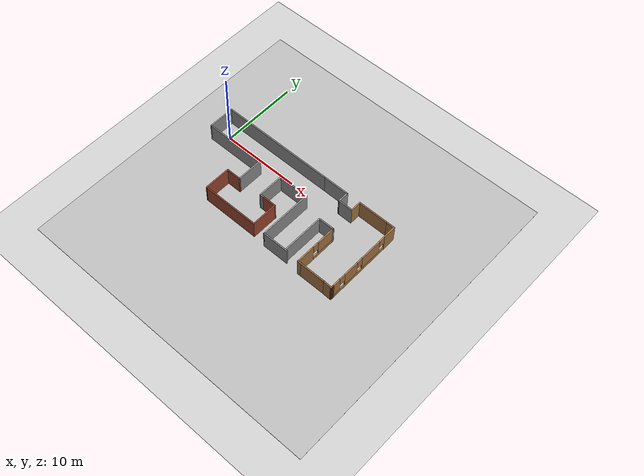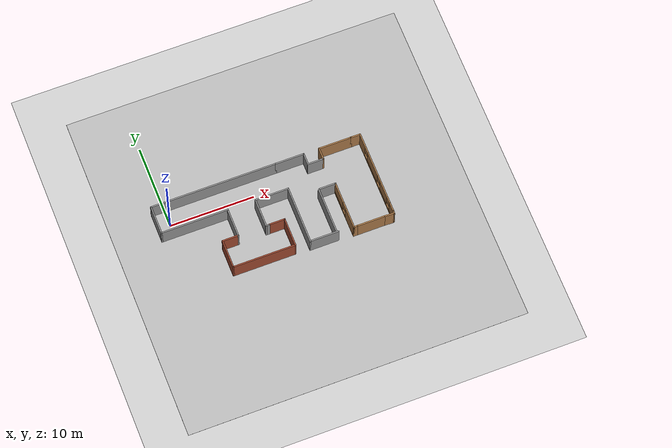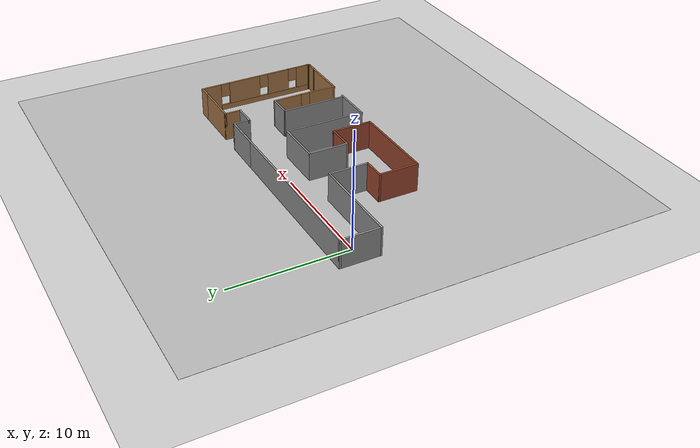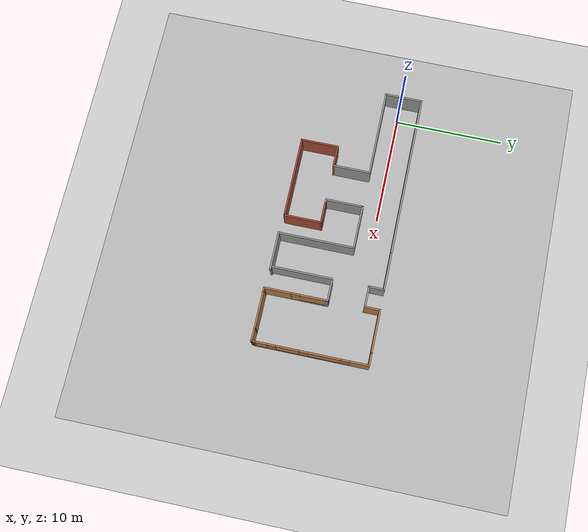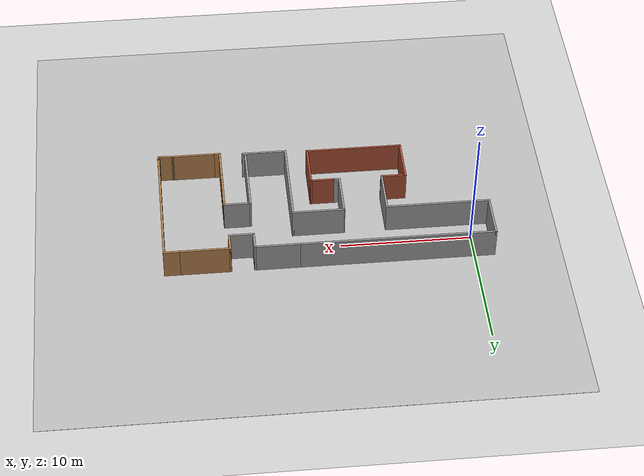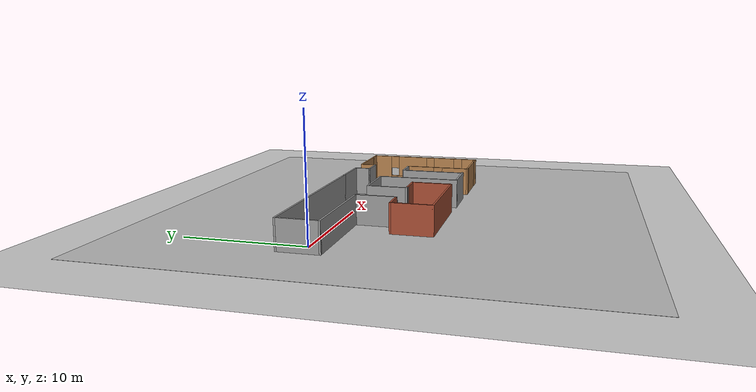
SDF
<sdf version="1.7">
 <world name="lab_world">
  <gravity>0 0 -9.8</gravity>
  <model name="ground_plane">
   <static>1</static>
   <link name="link">
    <collision name="collision">
     <geometry><plane><normal>0 0 1</normal><size>100 100</size></plane></geometry>
     <surface><friction><ode><mu>100</mu><mu2>50</mu2></ode></friction></surface>
    </collision>
    <visual name="visual">
     <cast_shadows>0</cast_shadows>
     <geometry><plane><normal>0 0 1</normal><size>100 100</size></plane></geometry>
     <material>
      <script><uri>file://media/materials/scripts/gazebo.material</uri><name>Gazebo/Grey</name></script>
     </material>
    </visual>
   </link>
  </model>
  <light name="sun" type="directional">
   <pose>0 0 10 0 -0 0</pose>
   <diffuse>0.8 0.8 0.8 1</diffuse>
   <specular>0.2 0.2 0.2 1</specular>
   <attenuation>
    <range>1000</range>
    <constant>0.9</constant>
    <linear>0.01</linear>
    <quadratic>0.001</quadratic>
   </attenuation>
   <direction>-0.5 0.1 -0.9</direction>
   <spot><inner_angle>0</inner_angle><outer_angle>0</outer_angle><falloff>0</falloff></spot>
  </light>
  <magnetic_field>6e-06 2.3e-05 -4.2e-05</magnetic_field>
  <atmosphere type="adiabatic"/>
  <physics type="ode">
   <max_step_size>0.001</max_step_size>
   <real_time_factor>1</real_time_factor>
   <real_time_update_rate>1000</real_time_update_rate>
  </physics>
  <scene><ambient>0.4 0.4 0.4 1</ambient><background>0.7 0.7 0.7 1</background><shadows>1</shadows></scene>
  <spherical_coordinates>
   <surface_model>EARTH_WGS84</surface_model>
   <latitude_deg>0</latitude_deg>
   <longitude_deg>0</longitude_deg>
   <elevation>0</elevation>
   <heading_deg>0</heading_deg>
  </spherical_coordinates>
  <model name="env01">
   <pose>11.0184 -3.33989 0 0 -0 0</pose>
   <link name="Wall_11">
    <collision name="Wall_11_Collision">
     <geometry><box><size>4 0.15 2.5</size></box></geometry>
     <pose>0 0 1.25 0 -0 0</pose>
    </collision>
    <visual name="Wall_11_Visual">
     <pose>0 0 1.25 0 -0 0</pose>
     <geometry><box><size>4 0.15 2.5</size></box></geometry>
     <material>
      <script><uri>file://media/materials/scripts/gazebo.material</uri><name>Gazebo/Grey</name></script>
      <ambient>1 1 1 1</ambient>
     </material>
     <meta><layer>0</layer></meta>
    </visual>
    <pose>0.616572 1.84989 0 0 -0 0</pose>
   </link>
   <link name="Wall_13">
    <collision name="Wall_13_Collision">
     <geometry><box><size>3.5 0.15 2.5</size></box></geometry>
     <pose>0 0 1.25 0 -0 0</pose>
    </collision>
    <visual name="Wall_13_Visual">
     <pose>0 0 1.25 0 -0 0</pose>
     <geometry><box><size>3.5 0.15 2.5</size></box></geometry>
     <material>
      <script><uri>file://media/materials/scripts/gazebo.material</uri><name>Gazebo/Grey</name></script>
      <ambient>1 1 1 1</ambient>
     </material>
     <meta><layer>0</layer></meta>
    </visual>
    <pose>-4.65843 0.174886 0 0 -0 -1.5708</pose>
   </link>
   <link name="Wall_14">
    <collision name="Wall_14_Collision">
     <geometry><box><size>2 0.15 2.5</size></box></geometry>
     <pose>0 0 1.25 0 -0 0</pose>
    </collision>
    <visual name="Wall_14_Visual">
     <pose>0 0 1.25 0 -0 0</pose>
     <geometry><box><size>2 0.15 2.5</size></box></geometry>
     <material>
      <script><uri>file://media/materials/scripts/gazebo.material</uri><name>Gazebo/Bricks</name></script>
      <ambient>1 1 1 1</ambient>
     </material>
     <meta><layer>0</layer></meta>
    </visual>
    <pose>-5.58343 -1.50011 0 0 -0 3.14159</pose>
   </link>
   <link name="Wall_15">
    <collision name="Wall_15_Collision">
     <geometry><box><size>3.5 0.15 2.5</size></box></geometry>
     <pose>0 0 1.25 0 -0 0</pose>
    </collision>
    <visual name="Wall_15_Visual">
     <pose>0 0 1.25 0 -0 0</pose>
     <geometry><box><size>3.5 0.15 2.5</size></box></geometry>
     <material>
      <script><uri>file://media/materials/scripts/gazebo.material</uri><name>Gazebo/Bricks</name></script>
      <ambient>1 1 1 1</ambient>
     </material>
     <meta><layer>0</layer></meta>
    </visual>
    <pose>-6.50843 -3.17511 0 0 -0 -1.5708</pose>
   </link>
   <link name="Wall_16">
    <collision name="Wall_16_Collision">
     <geometry><box><size>7.5 0.15 2.5</size></box></geometry>
     <pose>0 0 1.25 0 -0 0</pose>
    </collision>
    <visual name="Wall_16_Visual">
     <pose>0 0 1.25 0 -0 0</pose>
     <geometry><box><size>7.5 0.15 2.5</size></box></geometry>
     <material>
      <script><uri>file://media/materials/scripts/gazebo.material</uri><name>Gazebo/Bricks</name></script>
      <ambient>1 1 1 1</ambient>
     </material>
     <meta><layer>0</layer></meta>
    </visual>
    <pose>-2.83343 -4.85011 0 0 -0 0</pose>
   </link>
   <link name="Wall_17">
    <collision name="Wall_17_Collision">
     <geometry><box><size>3.5 0.15 2.5</size></box></geometry>
     <pose>0 0 1.25 0 -0 0</pose>
    </collision>
    <visual name="Wall_17_Visual">
     <pose>0 0 1.25 0 -0 0</pose>
     <geometry><box><size>3.5 0.15 2.5</size></box></geometry>
     <material>
      <script><uri>file://media/materials/scripts/gazebo.material</uri><name>Gazebo/Bricks</name></script>
      <ambient>1 1 1 1</ambient>
     </material>
     <meta><layer>0</layer></meta>
    </visual>
    <pose>0.841572 -3.17511 0 0 -0 1.5708</pose>
   </link>
   <link name="Wall_18">
    <collision name="Wall_18_Collision">
     <geometry><box><size>2 0.15 2.5</size></box></geometry>
     <pose>0 0 1.25 0 -0 0</pose>
    </collision>
    <visual name="Wall_18_Visual">
     <pose>0 0 1.25 0 -0 0</pose>
     <geometry><box><size>2 0.15 2.5</size></box></geometry>
     <material>
      <script><uri>file://media/materials/scripts/gazebo.material</uri><name>Gazebo/Bricks</name></script>
      <ambient>1 1 1 1</ambient>
     </material>
     <meta><layer>0</layer></meta>
    </visual>
    <pose>-0.083428 -1.50011 0 0 -0 3.14159</pose>
   </link>
   <link name="Wall_19">
    <collision name="Wall_19_Collision">
     <geometry><box><size>0.5 0.15 2.5</size></box></geometry>
     <pose>0 0 1.25 0 -0 0</pose>
    </collision>
    <visual name="Wall_19_Visual">
     <pose>0 0 1.25 0 -0 0</pose>
     <geometry><box><size>0.5 0.15 2.5</size></box></geometry>
     <material>
      <script><uri>file://media/materials/scripts/gazebo.material</uri><name>Gazebo/Grey</name></script>
      <ambient>1 1 1 1</ambient>
     </material>
     <meta><layer>0</layer></meta>
    </visual>
    <pose>-1.18343 -1.50011 0 0 -0 3.14159</pose>
   </link>
   <link name="Wall_20">
    <collision name="Wall_20_Collision">
     <geometry><box><size>3.5 0.15 2.5</size></box></geometry>
     <pose>0 0 1.25 0 -0 0</pose>
    </collision>
    <visual name="Wall_20_Visual">
     <pose>0 0 1.25 0 -0 0</pose>
     <geometry><box><size>3.5 0.15 2.5</size></box></geometry>
     <material>
      <script><uri>file://media/materials/scripts/gazebo.material</uri><name>Gazebo/Grey</name></script>
      <ambient>1 1 1 1</ambient>
     </material>
     <meta><layer>0</layer></meta>
    </visual>
    <pose>-1.35843 0.174886 0 0 -0 1.5708</pose>
   </link>
   <link name="Wall_22">
    <collision name="Wall_22_Collision">
     <geometry><box><size>3.5 0.15 2.5</size></box></geometry>
     <pose>0 0 1.25 0 -0 0</pose>
    </collision>
    <visual name="Wall_22_Visual">
     <pose>0 0 1.25 0 -0 0</pose>
     <geometry><box><size>3.5 0.15 2.5</size></box></geometry>
     <material>
      <script><uri>file://media/materials/scripts/gazebo.material</uri><name>Gazebo/Grey</name></script>
      <ambient>1 1 1 1</ambient>
     </material>
     <meta><layer>0</layer></meta>
    </visual>
    <pose>4.01657 5.19989 0 0 -0 0</pose>
   </link>
   <link name="Wall_23">
    <collision name="Wall_23_Collision">
     <geometry><box><size>1.5 0.15 2.5</size></box></geometry>
     <pose>0 0 1.25 0 -0 0</pose>
    </collision>
    <visual name="Wall_23_Visual">
     <pose>0 0 1.25 0 -0 0</pose>
     <geometry><box><size>1.5 0.15 2.5</size></box></geometry>
     <material>
      <script><uri>file://media/materials/scripts/gazebo.material</uri><name>Gazebo/Grey</name></script>
      <ambient>1 1 1 1</ambient>
     </material>
     <meta><layer>0</layer></meta>
    </visual>
    <pose>5.69157 4.52489 0 0 -0 -1.5708</pose>
   </link>
   <link name="Wall_25">
    <collision name="Wall_25_Collision">
     <geometry><box><size>5.5 0.15 2.5</size></box></geometry>
     <pose>0 0 1.25 0 -0 0</pose>
    </collision>
    <visual name="Wall_25_Visual">
     <pose>0 0 1.25 0 -0 0</pose>
     <geometry><box><size>5.5 0.15 2.5</size></box></geometry>
     <material>
      <script><uri>file://media/materials/scripts/gazebo.material</uri><name>Gazebo/Grey</name></script>
      <ambient>1 1 1 1</ambient>
     </material>
     <meta><layer>0</layer></meta>
    </visual>
    <pose>5.69157 -2.17511 0 0 -0 -1.5708</pose>
   </link>
   <link name="Wall_29">
    <collision name="Wall_29_Collision">
     <geometry><box><size>7 0.15 2.5</size></box></geometry>
     <pose>0 0 1.25 0 -0 0</pose>
    </collision>
    <visual name="Wall_29_Visual">
     <pose>0 0 1.25 0 -0 0</pose>
     <geometry><box><size>7 0.15 2.5</size></box></geometry>
     <material>
      <script><uri>file://media/materials/scripts/gazebo.material</uri><name>Gazebo/Grey</name></script>
      <ambient>1 1 1 1</ambient>
     </material>
     <meta><layer>0</layer></meta>
    </visual>
    <pose>2.54157 -1.57511 0 0 -0 -1.5708</pose>
   </link>
   <link name="Wall_32">
    <collision name="Wall_32_Collision">
     <geometry><box><size>3.5 0.15 2.5</size></box></geometry>
     <pose>0 0 1.25 0 -0 0</pose>
    </collision>
    <visual name="Wall_32_Visual">
     <pose>0 0 1.25 0 -0 0</pose>
     <geometry><box><size>3.5 0.15 2.5</size></box></geometry>
     <material>
      <script><uri>file://media/materials/scripts/gazebo.material</uri><name>Gazebo/Grey</name></script>
      <ambient>1 1 1 1</ambient>
     </material>
     <meta><layer>0</layer></meta>
    </visual>
    <pose>4.21657 -5.00011 0 0 -0 0</pose>
   </link>
   <link name="Wall_34">
    <collision name="Wall_34_Collision">
     <geometry><box><size>2 0.15 2.5</size></box></geometry>
     <pose>0 0 1.25 0 -0 0</pose>
    </collision>
    <visual name="Wall_34_Visual">
     <pose>0 0 1.25 0 -0 0</pose>
     <geometry><box><size>2 0.15 2.5</size></box></geometry>
     <material>
      <script><uri>file://media/materials/scripts/gazebo.material</uri><name>Gazebo/Grey</name></script>
      <ambient>1 1 1 1</ambient>
     </material>
     <meta><layer>0</layer></meta>
    </visual>
    <pose>6.61657 3.84989 0 0 -0 0</pose>
   </link>
   <link name="Wall_35">
    <collision name="Wall_35_Collision">
     <geometry><box><size>1.5 0.15 2.5</size></box></geometry>
     <pose>0 0 1.25 0 -0 0</pose>
    </collision>
    <visual name="Wall_35_Visual">
     <pose>0 0 1.25 0 -0 0</pose>
     <geometry><box><size>1.5 0.15 2.5</size></box></geometry>
     <material>
      <script><uri>file://media/materials/scripts/gazebo.material</uri><name>Gazebo/Wood</name></script>
      <ambient>1 1 1 1</ambient>
     </material>
     <meta><layer>0</layer></meta>
    </visual>
    <pose>7.54157 4.52489 0 0 -0 1.5708</pose>
   </link>
   <link name="Wall_36">
    <collision name="Wall_36_Collision">
     <geometry><box><size>4 0.15 2.5</size></box></geometry>
     <pose>0 0 1.25 0 -0 0</pose>
    </collision>
    <visual name="Wall_36_Visual">
     <pose>0 0 1.25 0 -0 0</pose>
     <geometry><box><size>4 0.15 2.5</size></box></geometry>
     <material>
      <script><uri>file://media/materials/scripts/gazebo.material</uri><name>Gazebo/Wood</name></script>
      <ambient>1 1 1 1</ambient>
     </material>
     <meta><layer>0</layer></meta>
    </visual>
    <pose>9.46657 5.19989 0 0 -0 0</pose>
   </link>
   <link name="Wall_38">
    <collision name="Wall_38_Collision">
     <geometry><box><size>3.5 0.15 2.5</size></box></geometry>
     <pose>0 0 1.25 0 -0 0</pose>
    </collision>
    <visual name="Wall_38_Visual">
     <pose>0 0 1.25 0 -0 0</pose>
     <geometry><box><size>3.5 0.15 2.5</size></box></geometry>
     <material>
      <script><uri>file://media/materials/scripts/gazebo.material</uri><name>Gazebo/Wood</name></script>
      <ambient>1 1 1 1</ambient>
     </material>
     <meta><layer>0</layer></meta>
    </visual>
    <pose>9.71657 -5.15011 0 0 -0 3.14159</pose>
   </link>
   <link name="Wall_39">
    <collision name="Wall_39_Collision">
     <geometry><box><size>0.5 0.15 2.5</size></box></geometry>
     <pose>0 0 1.25 0 -0 0</pose>
    </collision>
    <visual name="Wall_39_Visual">
     <pose>0 0 1.25 0 -0 0</pose>
     <geometry><box><size>0.5 0.15 2.5</size></box></geometry>
     <material>
      <script><uri>file://media/materials/scripts/gazebo.material</uri><name>Gazebo/Wood</name></script>
      <ambient>1 1 1 1</ambient>
     </material>
     <meta><layer>0</layer></meta>
    </visual>
    <pose>7.86657 -5.15011 0 0 -0 3.14159</pose>
   </link>
   <link name="Wall_4">
    <collision name="Wall_4_Collision">
     <geometry><box><size>3.5 0.15 2.5</size></box></geometry>
     <pose>0 0 1.25 0 -0 0</pose>
    </collision>
    <visual name="Wall_4_Visual">
     <pose>0 0 1.25 0 -0 0</pose>
     <geometry><box><size>3.5 0.15 2.5</size></box></geometry>
     <material>
      <script><uri>file://media/materials/scripts/gazebo.material</uri><name>Gazebo/Grey</name></script>
      <ambient>1 1 1 1</ambient>
     </material>
     <meta><layer>0</layer></meta>
    </visual>
    <pose>-12.5084 3.52489 0 0 -0 1.5708</pose>
   </link>
   <link name="Wall_40">
    <pose>7.69157 -2.35011 0 0 -0 1.5708</pose>
    <visual name="Wall_40_Visual_0">
     <pose>-1.63132 0 1.25 0 -0 0</pose>
     <geometry><box><size>2.48735 0.15 2.5</size></box></geometry>
     <material>
      <script><uri>file://media/materials/scripts/gazebo.material</uri><name>Gazebo/Wood</name></script>
      <ambient>1 1 1 1</ambient>
     </material>
     <meta><layer>0</layer></meta>
    </visual>
    <collision name="Wall_40_Collision_0">
     <geometry><box><size>2.48735 0.15 2.5</size></box></geometry>
     <pose>-1.63132 0 1.25 0 -0 0</pose>
    </collision>
    <visual name="Wall_40_Visual_1">
     <pose>1.24368 0 0.25 0 -0 0</pose>
     <geometry><box><size>3.26265 0.15 0.5</size></box></geometry>
     <material>
      <script><uri>file://media/materials/scripts/gazebo.material</uri><name>Gazebo/Wood</name></script>
      <ambient>1 1 1 1</ambient>
     </material>
     <meta><layer>0</layer></meta>
    </visual>
    <collision name="Wall_40_Collision_1">
     <geometry><box><size>3.26265 0.15 0.5</size></box></geometry>
     <pose>1.24368 0 0.25 0 -0 0</pose>
    </collision>
    <visual name="Wall_40_Visual_2">
     <pose>1.64368 0 1.5 0 -0 0</pose>
     <geometry><box><size>2.46265 0.15 2</size></box></geometry>
     <material>
      <script><uri>file://media/materials/scripts/gazebo.material</uri><name>Gazebo/Wood</name></script>
      <ambient>1 1 1 1</ambient>
     </material>
     <meta><layer>0</layer></meta>
    </visual>
    <collision name="Wall_40_Collision_2">
     <geometry><box><size>2.46265 0.15 2</size></box></geometry>
     <pose>1.64368 0 1.5 0 -0 0</pose>
    </collision>
    <visual name="Wall_40_Visual_3">
     <pose>0.012351 0 1.9 0 -0 0</pose>
     <geometry><box><size>0.8 0.15 1.2</size></box></geometry>
     <material>
      <script><uri>file://media/materials/scripts/gazebo.material</uri><name>Gazebo/Wood</name></script>
      <ambient>1 1 1 1</ambient>
     </material>
     <meta><layer>0</layer></meta>
    </visual>
    <collision name="Wall_40_Collision_3">
     <geometry><box><size>0.8 0.15 1.2</size></box></geometry>
     <pose>0.012351 0 1.9 0 -0 0</pose>
    </collision>
   </link>
   <link name="Wall_41">
    <collision name="Wall_41_Collision">
     <geometry><box><size>0.15 0.15 2.5</size></box></geometry>
     <pose>0 0 1.25 0 -0 0</pose>
    </collision>
    <visual name="Wall_41_Visual">
     <pose>0 0 1.25 0 -0 0</pose>
     <geometry><box><size>0.15 0.15 2.5</size></box></geometry>
     <material>
      <script><uri>file://media/materials/scripts/gazebo.material</uri><name>Gazebo/Grey</name></script>
      <ambient>1 1 1 1</ambient>
     </material>
     <meta><layer>0</layer></meta>
    </visual>
    <pose>7.69157 0.449886 0 0 -0 0</pose>
   </link>
   <link name="Wall_42">
    <collision name="Wall_42_Collision">
     <geometry><box><size>0.15 0.15 2.5</size></box></geometry>
     <pose>0 0 1.25 0 -0 0</pose>
    </collision>
    <visual name="Wall_42_Visual">
     <pose>0 0 1.25 0 -0 0</pose>
     <geometry><box><size>0.15 0.15 2.5</size></box></geometry>
     <material>
      <script><uri>file://media/materials/scripts/gazebo.material</uri><name>Gazebo/Grey</name></script>
      <ambient>1 1 1 1</ambient>
     </material>
     <meta><layer>0</layer></meta>
    </visual>
    <pose>7.69157 0.449886 0 0 -0 0</pose>
   </link>
   <link name="Wall_43">
    <collision name="Wall_43_Collision">
     <geometry><box><size>0.25 0.15 2.5</size></box></geometry>
     <pose>0 0 1.25 0 -0 0</pose>
    </collision>
    <visual name="Wall_43_Visual">
     <pose>0 0 1.25 0 -0 0</pose>
     <geometry><box><size>0.25 0.15 2.5</size></box></geometry>
     <material>
      <script><uri>file://media/materials/scripts/gazebo.material</uri><name>Gazebo/Grey</name></script>
      <ambient>1 1 1 1</ambient>
     </material>
     <meta><layer>0</layer></meta>
    </visual>
    <pose>7.69157 0.499886 0 0 -0 1.5708</pose>
   </link>
   <link name="Wall_44">
    <collision name="Wall_44_Collision">
     <geometry><box><size>2 0.15 2.5</size></box></geometry>
     <pose>0 0 1.25 0 -0 0</pose>
    </collision>
    <visual name="Wall_44_Visual">
     <pose>0 0 1.25 0 -0 0</pose>
     <geometry><box><size>2 0.15 2.5</size></box></geometry>
     <material>
      <script><uri>file://media/materials/scripts/gazebo.material</uri><name>Gazebo/Grey</name></script>
      <ambient>1 1 1 1</ambient>
     </material>
     <meta><layer>0</layer></meta>
    </visual>
    <pose>6.76657 0.549886 0 0 -0 3.14159</pose>
   </link>
   <link name="Wall_46">
    <collision name="Wall_46_Collision">
     <geometry><box><size>1.25 0.15 2.5</size></box></geometry>
     <pose>0 0 1.25 0 -0 0</pose>
    </collision>
    <visual name="Wall_46_Visual">
     <pose>0 0 1.25 0 -0 0</pose>
     <geometry><box><size>1.25 0.15 2.5</size></box></geometry>
     <material>
      <script><uri>file://media/materials/scripts/gazebo.material</uri><name>Gazebo/Wood</name></script>
      <ambient>1 1 1 1</ambient>
     </material>
     <meta><layer>0</layer></meta>
    </visual>
    <pose>11.9416 5.19989 0 0 -0 0</pose>
   </link>
   <link name="Wall_47">
    <pose>12.4916 0.149886 0 0 -0 -1.5708</pose>
    <visual name="Wall_47_Visual_0">
     <pose>-4.24104 0 1.25 0 -0 0</pose>
     <geometry><box><size>1.76792 0.15 2.5</size></box></geometry>
     <material>
      <script><uri>file://media/materials/scripts/gazebo.material</uri><name>Gazebo/Wood</name></script>
      <ambient>1 1 1 1</ambient>
     </material>
     <meta><layer>0</layer></meta>
    </visual>
    <collision name="Wall_47_Collision_0">
     <geometry><box><size>1.76792 0.15 2.5</size></box></geometry>
     <pose>-4.24104 0 1.25 0 -0 0</pose>
    </collision>
    <visual name="Wall_47_Visual_1">
     <pose>0.883958 0 0.25 0 -0 0</pose>
     <geometry><box><size>8.48208 0.15 0.5</size></box></geometry>
     <material>
      <script><uri>file://media/materials/scripts/gazebo.material</uri><name>Gazebo/Wood</name></script>
      <ambient>1 1 1 1</ambient>
     </material>
     <meta><layer>0</layer></meta>
    </visual>
    <collision name="Wall_47_Collision_1">
     <geometry><box><size>8.48208 0.15 0.5</size></box></geometry>
     <pose>0.883958 0 0.25 0 -0 0</pose>
    </collision>
    <visual name="Wall_47_Visual_2">
     <pose>-1.10162 0 1.5 0 -0 0</pose>
     <geometry><box><size>2.91093 0.15 2</size></box></geometry>
     <material>
      <script><uri>file://media/materials/scripts/gazebo.material</uri><name>Gazebo/Wood</name></script>
      <ambient>1 1 1 1</ambient>
     </material>
     <meta><layer>0</layer></meta>
    </visual>
    <collision name="Wall_47_Collision_2">
     <geometry><box><size>2.91093 0.15 2</size></box></geometry>
     <pose>-1.10162 0 1.5 0 -0 0</pose>
    </collision>
    <visual name="Wall_47_Visual_3">
     <pose>2.16826 0 1.5 0 -0 0</pose>
     <geometry><box><size>2.02883 0.15 2</size></box></geometry>
     <material>
      <script><uri>file://media/materials/scripts/gazebo.material</uri><name>Gazebo/Wood</name></script>
      <ambient>1 1 1 1</ambient>
     </material>
     <meta><layer>0</layer></meta>
    </visual>
    <collision name="Wall_47_Collision_3">
     <geometry><box><size>2.02883 0.15 2</size></box></geometry>
     <pose>2.16826 0 1.5 0 -0 0</pose>
    </collision>
    <visual name="Wall_47_Visual_4">
     <pose>4.55384 0 1.5 0 -0 0</pose>
     <geometry><box><size>1.14232 0.15 2</size></box></geometry>
     <material>
      <script><uri>file://media/materials/scripts/gazebo.material</uri><name>Gazebo/Wood</name></script>
      <ambient>1 1 1 1</ambient>
     </material>
     <meta><layer>0</layer></meta>
    </visual>
    <collision name="Wall_47_Collision_4">
     <geometry><box><size>1.14232 0.15 2</size></box></geometry>
     <pose>4.55384 0 1.5 0 -0 0</pose>
    </collision>
    <visual name="Wall_47_Visual_5">
     <pose>-2.95708 0 1.9 0 -0 0</pose>
     <geometry><box><size>0.8 0.15 1.2</size></box></geometry>
     <material>
      <script><uri>file://media/materials/scripts/gazebo.material</uri><name>Gazebo/Wood</name></script>
      <ambient>1 1 1 1</ambient>
     </material>
     <meta><layer>0</layer></meta>
    </visual>
    <collision name="Wall_47_Collision_5">
     <geometry><box><size>0.8 0.15 1.2</size></box></geometry>
     <pose>-2.95708 0 1.9 0 -0 0</pose>
    </collision>
    <visual name="Wall_47_Visual_6">
     <pose>0.753851 0 1.9 0 -0 0</pose>
     <geometry><box><size>0.8 0.15 1.2</size></box></geometry>
     <material>
      <script><uri>file://media/materials/scripts/gazebo.material</uri><name>Gazebo/Wood</name></script>
      <ambient>1 1 1 1</ambient>
     </material>
     <meta><layer>0</layer></meta>
    </visual>
    <collision name="Wall_47_Collision_6">
     <geometry><box><size>0.8 0.15 1.2</size></box></geometry>
     <pose>0.753851 0 1.9 0 -0 0</pose>
    </collision>
    <visual name="Wall_47_Visual_7">
     <pose>3.58268 0 1.9 0 -0 0</pose>
     <geometry><box><size>0.8 0.15 1.2</size></box></geometry>
     <material>
      <script><uri>file://media/materials/scripts/gazebo.material</uri><name>Gazebo/Wood</name></script>
      <ambient>1 1 1 1</ambient>
     </material>
     <meta><layer>0</layer></meta>
    </visual>
    <collision name="Wall_47_Collision_7">
     <geometry><box><size>0.8 0.15 1.2</size></box></geometry>
     <pose>3.58268 0 1.9 0 -0 0</pose>
    </collision>
   </link>
   <link name="Wall_48">
    <collision name="Wall_48_Collision">
     <geometry><box><size>0.25 0.15 2.5</size></box></geometry>
     <pose>0 0 1.25 0 -0 0</pose>
    </collision>
    <visual name="Wall_48_Visual">
     <pose>0 0 1.25 0 -0 0</pose>
     <geometry><box><size>0.25 0.15 2.5</size></box></geometry>
     <material>
      <script><uri>file://media/materials/scripts/gazebo.material</uri><name>Gazebo/Wood</name></script>
      <ambient>1 1 1 1</ambient>
     </material>
     <meta><layer>0</layer></meta>
    </visual>
    <pose>12.4916 -4.95011 0 0 -0 -1.5708</pose>
   </link>
   <link name="Wall_49">
    <collision name="Wall_49_Collision">
     <geometry><box><size>0.25 0.15 2.5</size></box></geometry>
     <pose>0 0 1.25 0 -0 0</pose>
    </collision>
    <visual name="Wall_49_Visual">
     <pose>0 0 1.25 0 -0 0</pose>
     <geometry><box><size>0.25 0.15 2.5</size></box></geometry>
     <material>
      <script><uri>file://media/materials/scripts/gazebo.material</uri><name>Gazebo/Wood</name></script>
      <ambient>1 1 1 1</ambient>
     </material>
     <meta><layer>0</layer></meta>
    </visual>
    <pose>12.4786 -5.04841 0 0 -0 -1.8326</pose>
   </link>
   <link name="Wall_5">
    <collision name="Wall_5_Collision">
     <geometry><box><size>15 0.15 2.5</size></box></geometry>
     <pose>0 0 1.25 0 -0 0</pose>
    </collision>
    <visual name="Wall_5_Visual">
     <pose>0 0 1.25 0 -0 0</pose>
     <geometry><box><size>15 0.15 2.5</size></box></geometry>
     <material>
      <script><uri>file://media/materials/scripts/gazebo.material</uri><name>Gazebo/Grey</name></script>
      <ambient>1 1 1 1</ambient>
     </material>
     <meta><layer>0</layer></meta>
    </visual>
    <pose>-5.08343 5.19989 0 0 -0 0</pose>
   </link>
   <link name="Wall_50">
    <collision name="Wall_50_Collision">
     <geometry><box><size>0.25 0.15 2.5</size></box></geometry>
     <pose>0 0 1.25 0 -0 0</pose>
    </collision>
    <visual name="Wall_50_Visual">
     <pose>0 0 1.25 0 -0 0</pose>
     <geometry><box><size>0.25 0.15 2.5</size></box></geometry>
     <material>
      <script><uri>file://media/materials/scripts/gazebo.material</uri><name>Gazebo/Wood</name></script>
      <ambient>1 1 1 1</ambient>
     </material>
     <meta><layer>0</layer></meta>
    </visual>
    <pose>12.4657 -5.14671 0 0 -0 -1.5708</pose>
   </link>
   <link name="Wall_51">
    <collision name="Wall_51_Collision">
     <geometry><box><size>1.22513 0.15 2.5</size></box></geometry>
     <pose>0 0 1.25 0 -0 0</pose>
    </collision>
    <visual name="Wall_51_Visual">
     <pose>0 0 1.25 0 -0 0</pose>
     <geometry><box><size>1.22513 0.15 2.5</size></box></geometry>
     <material>
      <script><uri>file://media/materials/scripts/gazebo.material</uri><name>Gazebo/Wood</name></script>
      <ambient>1 1 1 1</ambient>
     </material>
     <meta><layer>0</layer></meta>
    </visual>
    <pose>11.9286 -5.17341 0 0 -0 3.09824</pose>
   </link>
   <link name="Wall_9">
    <collision name="Wall_9_Collision">
     <geometry><box><size>8 0.15 2.5</size></box></geometry>
     <pose>0 0 1.25 0 -0 0</pose>
    </collision>
    <visual name="Wall_9_Visual">
     <pose>0 0 1.25 0 -0 0</pose>
     <geometry><box><size>8 0.15 2.5</size></box></geometry>
     <material>
      <script><uri>file://media/materials/scripts/gazebo.material</uri><name>Gazebo/Grey</name></script>
      <ambient>1 1 1 1</ambient>
     </material>
     <meta><layer>0</layer></meta>
    </visual>
    <pose>-8.58343 1.84989 0 0 -0 0</pose>
   </link>
   <static>1</static>
  </model>
  <model name="Floor">
   <link name="main">
    <pose>0 0 0.01 0 -0 0</pose>
    <collision name="main_Collision"><geometry><box><size>40 40 0.01</size></box></geometry></collision>
    <visual name="main_Visual">
     <geometry><box><size>40 40 0.01</size></box></geometry>
     <material>
      <script>
       <uri>model://Floor/materials/scripts</uri>
       <uri>model://Floor/materials/textures</uri>
       <name>floor</name>
      </script>
     </material>
    </visual>
   </link>
   <static>1</static>
   <pose>13.2918 -4.06674 0 0 -0 0</pose>
  </model>
 </world>
</sdf>
